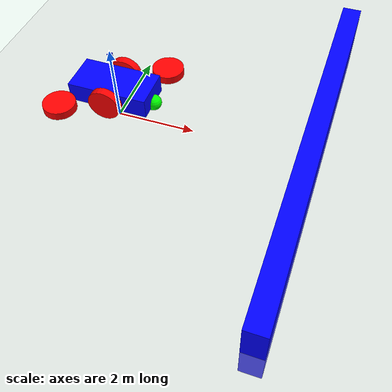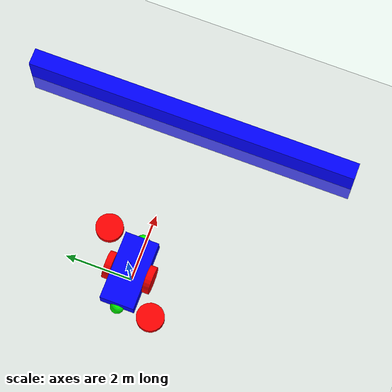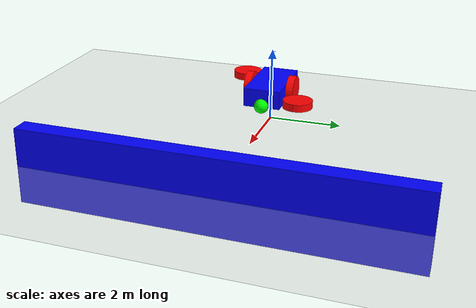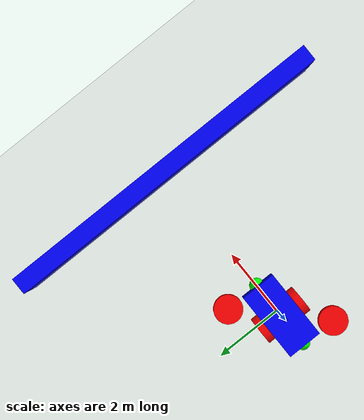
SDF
<?xml version="1.0"?>
<!-- Taken from
https://github.com/gazebosim/docs/blob/master/ionic/tutorials/sensors/sensor_tutorial.sdf-->
<!-- https://gazebosim.org/docs/latest/sensors/ -->
<sdf version="1.8">
  <world name="sensor_world">
    <physics name="1ms" type="ignored">
      <max_step_size>0.001</max_step_size>
      <real_time_factor>1.0</real_time_factor>
    </physics>
    <plugin
      filename="gz-sim-physics-system"
      name="gz::sim::systems::Physics">
    </plugin>
    <plugin
      filename="gz-sim-user-commands-system"
      name="gz::sim::systems::UserCommands">
    </plugin>
    <plugin
      filename="gz-sim-scene-broadcaster-system"
      name="gz::sim::systems::SceneBroadcaster">
    </plugin>
    <plugin
      filename="gz-sim-contact-system"
      name="gz::sim::systems::Contact">
    </plugin>

    <light type="directional" name="sun">
      <cast_shadows>true</cast_shadows>
      <pose>0 0 10 0 0 0</pose>
      <diffuse>0.8 0.8 0.8 1</diffuse>
      <specular>0.2 0.2 0.2 1</specular>
      <attenuation>
        <range>1000</range>
        <constant>0.9</constant>
        <linear>0.01</linear>
        <quadratic>0.001</quadratic>
      </attenuation>
      <direction>-0.5 0.1 -0.9</direction>
    </light>

    <model name="ground_plane">
      <static>true</static>
      <link name="link">
        <collision name="collision">
          <geometry>
            <plane>
              <normal>0 0 1</normal>
            </plane>
          </geometry>
        </collision>
        <visual name="visual">
          <geometry>
            <plane>
              <normal>0 0 1</normal>
              <size>100 100</size>
            </plane>
          </geometry>
          <material>
            <ambient>0.8 0.8 0.8 1</ambient>
            <diffuse>0.8 0.8 0.8 1</diffuse>
            <specular>0.8 0.8 0.8 1</specular>
          </material>
        </visual>
      </link>
    </model>

    <!-- This is an option to spawn the model directly -->

    <model name="amr_robot_model_name">
      <self_collide>true</self_collide>
      <pose>0 0 0.5 0 0 0</pose>
      <include merge="true">
        <uri>package://gz_sim_description/models/diff_drive</uri>
      </include>
    </model>

    <!--wall-->
    <model name='wall'>
      <static>true</static>
      <pose>5 0 0 0 0 0</pose><!--pose
            relative to the world-->
      <link name='box'>
        <pose />
        <inertial> <!--inertial
                    properties of the link mass, inertia matix-->
          <mass>1.14395</mass>
          <inertia>
            <ixx>9.532917</ixx>
            <ixy>0</ixy>
            <ixz>0</ixz>
            <iyy>0.023832</iyy>
            <iyz>0</iyz>
            <izz>9.556749</izz>
          </inertia>
        </inertial>
        <visual name='visual'>
          <geometry>
            <box>
              <size>0.5 10.0 2.0</size>
            </box>
          </geometry>
          <material>
            <ambient>0.0 0.0 1.0 1</ambient>
            <diffuse>0.0 0.0 1.0 1</diffuse>
            <specular>0.0 0.0 1.0 1</specular>
          </material>
        </visual>
        <collision name='collision'>
          <geometry>
            <box>
              <size>0.5 10.0 2.0</size>
            </box>
          </geometry>
        </collision>
        <sensor name='sensor_contact' type='contact'>
          <contact>
            <collision>collision</collision>
          </contact>
        </sensor>
      </link>
      <plugin filename="gz-sim-touchplugin-system"
        name="gz::sim::systems::TouchPlugin">
        <target>vehicle_blue</target>
        <namespace>wall</namespace>
        <time>0.001</time>
        <enabled>true</enabled>
      </plugin>
    </model>

  </world>
</sdf>

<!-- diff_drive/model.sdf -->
<sdf version="1.8">
    <!-- I could not find any instance of gazebo or ros using this name, ignore it. -->
    <model name="amr_robot_model_file_name" canonical_link="chassis">
        <!-- Plugins required -->
        <plugin
            filename="gz-sim-imu-system"
            name="gz::sim::systems::Imu">
        </plugin>

        <link name="chassis">
            <pose relative_to="__model__"> 0 0 0.4 0 0 0 </pose>
            <inertial>
                <mass> 1.14395 </mass>
                <inertia>
                    <ixx> 0.126164 </ixx>
                    <ixy> 0 </ixy>
                    <ixz> 0 </ixz>
                    <iyy> 0.416519 </iyy>
                    <iyz> 0 </iyz>
                    <izz> 0.481014 </izz>
                </inertia>
            </inertial>
            <visual name="visual">
                <geometry>
                    <box>
                        <size> 2.0 1.0 0.5 </size>
                    </box>
                </geometry>
                <material>
                    <ambient> 0.0 0.0 1.0 1 </ambient>
                    <diffuse> 0.0 0.0 1.0 1 </diffuse>
                    <specular> 0.0 0.0 1.0 1 </specular>
                </material>
            </visual>
            <collision name="collision">
                <geometry>
                    <box>
                        <size> 2.0 1.0 0.5 </size>
                    </box>
                </geometry>
            </collision>
        </link>

        <frame name="front_caster_wheel_frame" attached_to="chassis">
            <pose> 1 0 -0.2 0 0 0 </pose>
        </frame>
        <link name="front_caster_wheel_link">
            <pose relative_to="front_caster_wheel_frame" />
            <visual name="visual">
                <geometry>
                    <sphere>
                        <radius> 0.2 </radius>
                    </sphere>
                </geometry>
                <material>
                    <ambient> 0.0 1 0.0 1 </ambient>
                    <diffuse> 0.0 1 0.0 1 </diffuse>
                    <specular> 0.0 1 0.0 1 </specular>
                </material>
            </visual>
            <collision name="collision">
                <geometry>
                    <sphere>
                        <radius> 0.2 </radius>
                    </sphere>
                </geometry>
            </collision>
        </link>

        <joint name="front_caster_wheel_wheel" type="ball">
            <parent> chassis </parent>
            <child> front_caster_wheel_link </child>
        </joint>

        <frame name="back_caster_wheel_frame" attached_to="chassis">
            <pose> -1 0 -0.2 0 0 0 </pose>
        </frame>
        <link name="back_caster_wheel_link">
            <pose relative_to="back_caster_wheel_frame" />
            <visual name="visual">
                <geometry>
                    <sphere>
                        <radius> 0.2 </radius>
                    </sphere>
                </geometry>
                <material>
                    <ambient> 0.0 1 0.0 1 </ambient>
                    <diffuse> 0.0 1 0.0 1 </diffuse>
                    <specular> 0.0 1 0.0 1 </specular>
                </material>
            </visual>
            <collision name="collision">
                <geometry>
                    <sphere>
                        <radius> 0.2 </radius>
                    </sphere>
                </geometry>
            </collision>
        </link>

        <joint name="back_caster_wheel_wheel" type="ball">
            <parent> chassis </parent>
            <child> back_caster_wheel_link </child>
        </joint>

        <!-- The documentation of Gazebo says that continous joint is not
        supported yet, that's why they are revolute -->

        <!-- Left wheel -->
        <link name="left_wheel">
            <pose relative_to="chassis"> 0 0.6 0 -1.5707 0 0 </pose>
            <visual name="visual">
                <geometry>
                    <cylinder>
                        <radius> 0.4 </radius>
                        <length> 0.2 </length>
                    </cylinder>
                </geometry>
                <material>
                    <ambient> 1.0 0.0 0.0 1 </ambient>
                    <diffuse> 1.0 0.0 0.0 1 </diffuse>
                    <specular> 1.0 0.0 0.0 1 </specular>
                </material>
            </visual>
            <collision name="collision">
                <geometry>
                    <cylinder>
                        <radius> 0.4 </radius>
                        <length> 0.2 </length>
                    </cylinder>
                </geometry>
            </collision>
        </link>

        <joint name="left_wheel_joint" type="revolute">
            <pose relative_to="left_wheel" />
            <parent> chassis </parent>
            <child> left_wheel </child>
            <axis>
                <xyz expressed_in="__model__"> 0 1 0 </xyz>
                <limit>
                    <lower> -1.79769e+308 </lower>  <!-- negative infinity -->
                    <upper> 1.79769e+308 </upper>  <!-- positive infinity -->
                </limit>
            </axis>
        </joint>

        <!-- Right wheel -->
        <link name="right_wheel">
            <pose relative_to="chassis"> 0 -0.6 0 -1.5707 0 0 </pose>
            <visual name="visual">
                <geometry>
                    <cylinder>
                        <radius> 0.4 </radius>
                        <length> 0.2 </length>
                    </cylinder>
                </geometry>
                <material>
                    <ambient> 1.0 0.0 0.0 1 </ambient>
                    <diffuse> 1.0 0.0 0.0 1 </diffuse>
                    <specular> 1.0 0.0 0.0 1 </specular>
                </material>
            </visual>
            <collision name="collision">
                <geometry>
                    <cylinder>
                        <radius> 0.4 </radius>
                        <length> 0.2 </length>
                    </cylinder>
                </geometry>
            </collision>
        </link>

        <joint name="right_wheel_joint" type="revolute">
            <pose relative_to="right_wheel" />
            <parent> chassis </parent>
            <child> right_wheel </child>
            <axis>
                <xyz expressed_in="__model__"> 0 1 0 </xyz>
                <limit>
                    <lower> -1.79769e+308 </lower>  <!-- negative infinity -->
                    <upper> 1.79769e+308 </upper>  <!-- positive infinity -->
                </limit>
            </axis>
        </joint>

        <!-- diff drive plugin -->
        <plugin
            filename="gz-sim-diff-drive-system"
            name="gz::sim::systems::DiffDrive">
            <left_joint> left_wheel_joint </left_joint>
            <right_joint> right_wheel_joint </right_joint>
            <wheel_separation> 1.2 </wheel_separation>
            <wheel_radius> 0.4 </wheel_radius>
            <odom_publish_frequency> 20 </odom_publish_frequency>
        </plugin>

        <!-- plugin required by the lidars -->
        <plugin
            filename="gz-sim-sensors-system"
            name="gz::sim::systems::Sensors">
            <render_engine> ogre2 </render_engine>
        </plugin>

        <frame name="front_lidar_frame" attached_to="front_lidar_link">
            <pose> 0 0 0 0 0 0 </pose>
        </frame>
        <link name="front_lidar_link">
            <pose relative_to="chassis"> 1 1 0 0 0 0 </pose>
            <visual name="visual">
                <geometry>
                    <cylinder>
                        <radius> 0.4 </radius>
                        <length> 0.2 </length>
                    </cylinder>
                </geometry>
                <material>
                    <ambient> 1.0 0.0 0.0 1 </ambient>
                    <diffuse> 1.0 0.0 0.0 1 </diffuse>
                    <specular> 1.0 0.0 0.0 1 </specular>
                </material>
            </visual>
            <collision name="collision">
                <geometry>
                    <cylinder>
                        <radius> 0.4 </radius>
                        <length> 0.2 </length>
                    </cylinder>
                </geometry>
            </collision>
            <sensor name="front_lidar_sensor" type="gpu_lidar">
                <pose relative_to="front_lidar_frame"> 0 0 0 0
                    0 0 </pose>
                <topic> /model/amr_robot_model_name/front_lidar </topic>
                <gz_frame_id>amr_robot_model_name/front_lidar_link</gz_frame_id>
                <update_rate> 10 </update_rate>
                <ray>
                    <scan>
                        <horizontal>
                            <samples> 180 </samples>
                            <resolution> 1 </resolution>
                            <min_angle> -3.1415 </min_angle>
                            <max_angle> 3.1415 </max_angle>
                        </horizontal>
                        <vertical>
                            <samples> 1 </samples>
                            <resolution> 0.01 </resolution>
                            <min_angle> 0 </min_angle>
                            <max_angle> 0 </max_angle>
                        </vertical>
                    </scan>
                    <range>
                        <min> 0.08 </min>
                        <max> 10.0 </max>
                        <resolution> 0.01 </resolution>
                    </range>
                </ray>
                <always_on> 1 </always_on>
                <visualize> true </visualize>
            </sensor>
        </link>

        <joint name="front_lidar_joint" type="fixed">
            <pose relative_to="front_lidar_link" />
            <parent> chassis </parent>
            <child> front_lidar_link </child>
        </joint>

        <frame name="back_lidar_frame" attached_to="back_lidar_link">
            <pose> 0 0 0 0 0 0 </pose>
        </frame>
        <link name="back_lidar_link">
            <pose relative_to="chassis"> -1 -1 0 0 0 0 </pose>
            <visual name="visual">
                <geometry>
                    <cylinder>
                        <radius> 0.4 </radius>
                        <length> 0.2 </length>
                    </cylinder>
                </geometry>
                <material>
                    <ambient> 1.0 0.0 0.0 1 </ambient>
                    <diffuse> 1.0 0.0 0.0 1 </diffuse>
                    <specular> 1.0 0.0 0.0 1 </specular>
                </material>
            </visual>
            <collision name="collision">
                <geometry>
                    <cylinder>
                        <radius> 0.4 </radius>
                        <length> 0.2 </length>
                    </cylinder>
                </geometry>
            </collision>
            <sensor name="back_lidar_sensor" type="gpu_lidar">
                <pose relative_to="back_lidar_frame"> 0 0 0 0
                    0 0 </pose>
                <topic> /model/amr_robot_model_name/back_lidar </topic>
                <gz_frame_id> amr_robot_model_name/back_lidar_link </gz_frame_id>
                <update_rate> 10 </update_rate>
                <ray>
                    <scan>
                        <horizontal>
                            <samples> 640 </samples>
                            <resolution> 1 </resolution>
                            <min_angle> -1.396263 </min_angle>
                            <max_angle> 1.396263 </max_angle>
                        </horizontal>
                        <vertical>
                            <samples> 1 </samples>
                            <resolution> 0.01 </resolution>
                            <min_angle> 0 </min_angle>
                            <max_angle> 0 </max_angle>
                        </vertical>
                    </scan>
                    <range>
                        <min> 0.08 </min>
                        <max> 10.0 </max>
                        <resolution> 0.01 </resolution>
                    </range>
                </ray>
                <always_on> 1 </always_on>
                <visualize> true </visualize>
            </sensor>
        </link>

        <joint name="back_lidar_joint" type="fixed">
            <pose relative_to="back_lidar_link" />
            <parent> chassis </parent>
            <child> back_lidar_link </child>
        </joint>

        <frame name="imu_frame" attached_to="imu_link">
            <pose> 0 0 0 0 0 0 </pose>
        </frame>
        <joint name="imu_joint" type="fixed">
            <pose relative_to="imu_link" />
            <parent> chassis </parent>
            <child> imu_link </child>
        </joint>
        <link name="imu_link">
            <pose relative_to="chassis"> 0 0 1 0 0 0 </pose>
            <visual name="visual">
                <geometry>
                    <box>
                        <size> 0.1 0.1 0.1 </size>
                    </box>
                </geometry>
                <material>
                    <ambient> 0.0 0.0 1.0 1 </ambient>
                    <diffuse> 0.0 0.0 1.0 1 </diffuse>
                    <specular> 0.0 0.0 1.0 1 </specular>
                </material>
            </visual>
            <collision name="collision">
                <geometry>
                    <box>
                        <size> 0.1 0.1 0.1 </size>
                    </box>
                </geometry>
            </collision>

            <sensor name="imu_sensor" type="imu">
                <always_on> 1 </always_on>
                <update_rate> 1 </update_rate>
                <visualize> true </visualize>
                <topic> /model/amr_robot_model_name/imu </topic>
            </sensor>
        </link>

        <!-- TODO understand this, what is the difference from the cmd_vel plugin, and if that can
        specify the frame, if possible we should remove this -->
        <plugin
            filename="gz-sim-odometry-publisher-system"
            name="gz::sim::systems::OdometryPublisher">
            <odom_frame>amr_robot_model_name/odom</odom_frame>
            <robot_base_frame>amr_robot_model_name</robot_base_frame>
        </plugin>

        <plugin
            filename="gz-sim-pose-publisher-system"
            name="gz::sim::systems::PosePublisher">
            <publish_link_pose>true</publish_link_pose>
            <use_pose_vector_msg>true</use_pose_vector_msg>
            <static_publisher>true</static_publisher>
            <static_update_frequency>1</static_update_frequency>
        </plugin>

        <plugin
            filename="gz-sim-joint-state-publisher-system"
            name="gz::sim::systems::JointStatePublisher">
        </plugin>
    </model>
</sdf>
